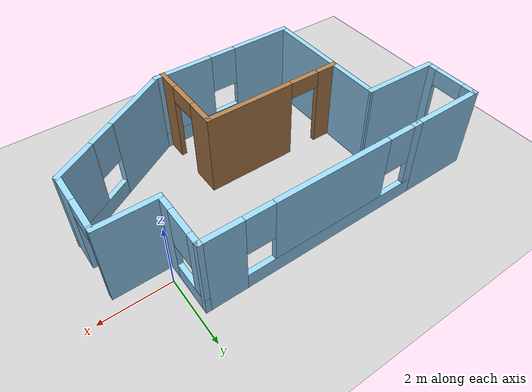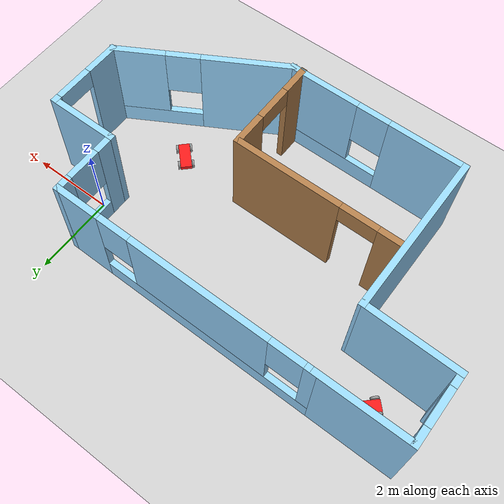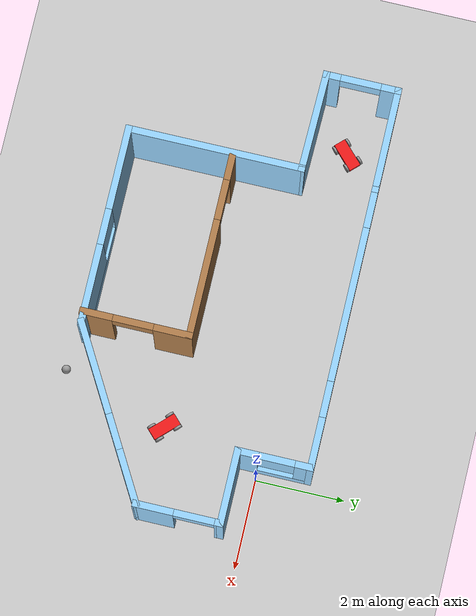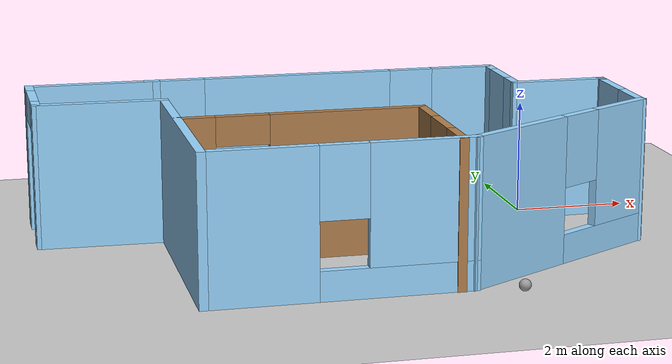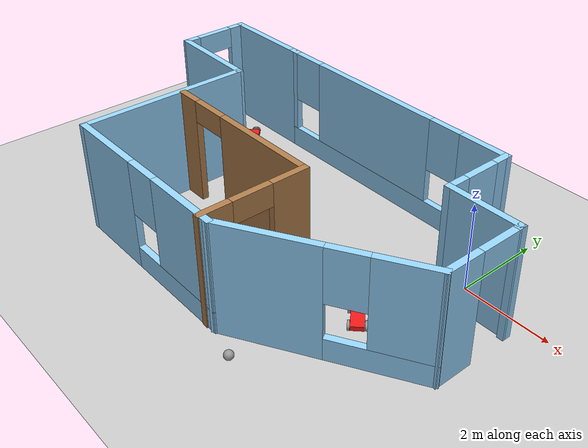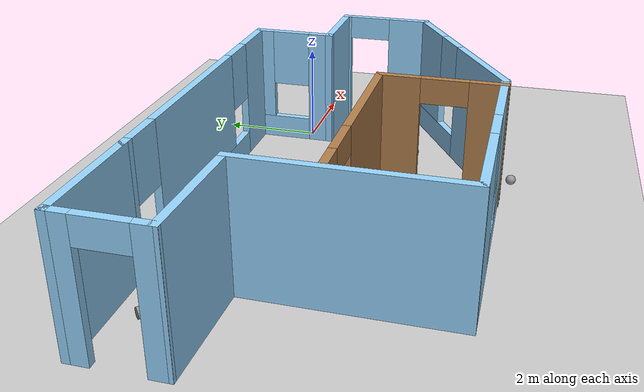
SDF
<sdf version="1.6">
 <world name="default">
  <plugin name="hello" filename="libhello.so"/>
  <light name="sun" type="directional">
   <pose>0 0 10 0 -0 0</pose>
   <diffuse>0.8 0.8 0.8 1</diffuse>
   <specular>0.2 0.2 0.2 1</specular>
   <attenuation>
    <range>1000</range>
    <constant>0.9</constant>
    <linear>0.01</linear>
    <quadratic>0.001</quadratic>
   </attenuation>
   <direction>-0.5 0.1 -0.9</direction>
   <spot><inner_angle>0</inner_angle><outer_angle>0</outer_angle><falloff>0</falloff></spot>
  </light>
  <model name="ground_plane">
   <static>1</static>
   <link name="link">
    <collision name="collision">
     <geometry><plane><normal>0 0 1</normal><size>100 100</size></plane></geometry>
     <surface>
      <contact><collide_bitmask>65535</collide_bitmask></contact>
      <friction><ode><mu>100</mu><mu2>50</mu2></ode></friction>
     </surface>
    </collision>
    <visual name="visual">
     <cast_shadows>0</cast_shadows>
     <geometry><plane><normal>0 0 1</normal><size>100 100</size></plane></geometry>
     <material>
      <script><uri>file://media/materials/scripts/gazebo.material</uri><name>Gazebo/Grey</name></script>
     </material>
    </visual>
   </link>
  </model>
  <gravity>0 0 -9.8</gravity>
  <magnetic_field>6e-06 2.3e-05 -4.2e-05</magnetic_field>
  <atmosphere type="adiabatic"/>
  <physics name="default_physics" default="0" type="ode">
   <max_step_size>0.001</max_step_size>
   <real_time_factor>1</real_time_factor>
   <real_time_update_rate>1000</real_time_update_rate>
  </physics>
  <scene><ambient>0.4 0.4 0.4 1</ambient><background>0.7 0.7 0.7 1</background><shadows>1</shadows></scene>
  <spherical_coordinates>
   <surface_model>EARTH_WGS84</surface_model>
   <latitude_deg>0</latitude_deg>
   <longitude_deg>0</longitude_deg>
   <elevation>0</elevation>
   <heading_deg>0</heading_deg>
  </spherical_coordinates>
  <model name="building2">
   <pose>-3.66619 -1.63301 0 0 -0 0</pose>
   <link name="Wall_0">
    <collision name="Wall_0_Collision">
     <geometry><box><size>4 0.15 2.5</size></box></geometry>
     <pose>0 0 1.25 0 -0 0</pose>
    </collision>
    <visual name="Wall_0_Visual">
     <pose>0 0 1.25 0 -0 0</pose>
     <geometry><box><size>4 0.15 2.5</size></box></geometry>
     <material>
      <script><uri>file://media/materials/scripts/gazebo.material</uri><name>Gazebo/Grey</name></script>
      <ambient>0.596078 0.839216 1 1</ambient>
     </material>
     <meta><layer>0</layer></meta>
    </visual>
    <pose>-2.88857 -0.811274 0 0 0 -1.5708</pose>
   </link>
   <link name="Wall_1">
    <pose>-0.713568 -2.73627 0 0 -0 0</pose>
    <visual name="Wall_1_Visual_0">
     <pose>-1.30188 0 1.25 0 -0 0</pose>
     <geometry><box><size>1.89624 0.15 2.5</size></box></geometry>
     <material>
      <script><uri>file://media/materials/scripts/gazebo.material</uri><name>Gazebo/Grey</name></script>
      <ambient>0.596078 0.839216 1 1</ambient>
     </material>
     <meta><layer>0</layer></meta>
    </visual>
    <collision name="Wall_1_Collision_0">
     <geometry><box><size>1.89624 0.15 2.5</size></box></geometry>
     <pose>-1.30188 0 1.25 0 -0 0</pose>
    </collision>
    <visual name="Wall_1_Visual_1">
     <pose>0.948119 0 0.25 0 -0 0</pose>
     <geometry><box><size>2.60376 0.15 0.5</size></box></geometry>
     <material>
      <script><uri>file://media/materials/scripts/gazebo.material</uri><name>Gazebo/Grey</name></script>
      <ambient>0.596078 0.839216 1 1</ambient>
     </material>
     <meta><layer>0</layer></meta>
    </visual>
    <collision name="Wall_1_Collision_1">
     <geometry><box><size>2.60376 0.15 0.5</size></box></geometry>
     <pose>0.948119 0 0.25 0 -0 0</pose>
    </collision>
    <visual name="Wall_1_Visual_2">
     <pose>1.34812 0 1.5 0 -0 0</pose>
     <geometry><box><size>1.80376 0.15 2</size></box></geometry>
     <material>
      <script><uri>file://media/materials/scripts/gazebo.material</uri><name>Gazebo/Grey</name></script>
      <ambient>0.596078 0.839216 1 1</ambient>
     </material>
     <meta><layer>0</layer></meta>
    </visual>
    <collision name="Wall_1_Collision_2">
     <geometry><box><size>1.80376 0.15 2</size></box></geometry>
     <pose>1.34812 0 1.5 0 -0 0</pose>
    </collision>
    <visual name="Wall_1_Visual_3">
     <pose>0.046238 0 1.9 0 -0 0</pose>
     <geometry><box><size>0.8 0.15 1.2</size></box></geometry>
     <material>
      <script><uri>file://media/materials/scripts/gazebo.material</uri><name>Gazebo/Grey</name></script>
      <ambient>0.596078 0.839216 1 1</ambient>
     </material>
     <meta><layer>0</layer></meta>
    </visual>
    <collision name="Wall_1_Collision_3">
     <geometry><box><size>0.8 0.15 1.2</size></box></geometry>
     <pose>0.046238 0 1.9 0 -0 0</pose>
    </collision>
   </link>
   <link name="Wall_11">
    <pose>-0.821078 -0.407909 0 0 -0 0</pose>
    <visual name="Wall_11_Visual_0">
     <pose>-1.7878 0 1.25 0 -0 0</pose>
     <geometry><box><size>0.674403 0.15 2.5</size></box></geometry>
     <material>
      <script><uri>file://media/materials/scripts/gazebo.material</uri><name>Gazebo/Wood</name></script>
      <ambient>1 1 1 1</ambient>
     </material>
     <meta><layer>0</layer></meta>
    </visual>
    <collision name="Wall_11_Collision_0">
     <geometry><box><size>0.674403 0.15 2.5</size></box></geometry>
     <pose>-1.7878 0 1.25 0 -0 0</pose>
    </collision>
    <visual name="Wall_11_Visual_1">
     <pose>0.787202 0 1.25 0 -0 0</pose>
     <geometry><box><size>2.6756 0.15 2.5</size></box></geometry>
     <material>
      <script><uri>file://media/materials/scripts/gazebo.material</uri><name>Gazebo/Wood</name></script>
      <ambient>1 1 1 1</ambient>
     </material>
     <meta><layer>0</layer></meta>
    </visual>
    <collision name="Wall_11_Collision_1">
     <geometry><box><size>2.6756 0.15 2.5</size></box></geometry>
     <pose>0.787202 0 1.25 0 -0 0</pose>
    </collision>
    <visual name="Wall_11_Visual_2">
     <pose>-1.0006 0 2.25 0 -0 0</pose>
     <geometry><box><size>0.9 0.15 0.5</size></box></geometry>
     <material>
      <script><uri>file://media/materials/scripts/gazebo.material</uri><name>Gazebo/Wood</name></script>
      <ambient>1 1 1 1</ambient>
     </material>
     <meta><layer>0</layer></meta>
    </visual>
    <collision name="Wall_11_Collision_2">
     <geometry><box><size>0.9 0.15 0.5</size></box></geometry>
     <pose>-1.0006 0 2.25 0 -0 0</pose>
    </collision>
   </link>
   <link name="Wall_12">
    <pose>1.22892 -1.58291 0 0 0 -1.5708</pose>
    <visual name="Wall_12_Visual_0">
     <pose>-0.816603 0 1.25 0 -0 0</pose>
     <geometry><box><size>0.866794 0.15 2.5</size></box></geometry>
     <material>
      <script><uri>file://media/materials/scripts/gazebo.material</uri><name>Gazebo/Wood</name></script>
      <ambient>1 1 1 1</ambient>
     </material>
     <meta><layer>0</layer></meta>
    </visual>
    <collision name="Wall_12_Collision_0">
     <geometry><box><size>0.866794 0.15 2.5</size></box></geometry>
     <pose>-0.816603 0 1.25 0 -0 0</pose>
    </collision>
    <visual name="Wall_12_Visual_1">
     <pose>0.883397 0 1.25 0 -0 0</pose>
     <geometry><box><size>0.733206 0.15 2.5</size></box></geometry>
     <material>
      <script><uri>file://media/materials/scripts/gazebo.material</uri><name>Gazebo/Wood</name></script>
      <ambient>1 1 1 1</ambient>
     </material>
     <meta><layer>0</layer></meta>
    </visual>
    <collision name="Wall_12_Collision_1">
     <geometry><box><size>0.733206 0.15 2.5</size></box></geometry>
     <pose>0.883397 0 1.25 0 -0 0</pose>
    </collision>
    <visual name="Wall_12_Visual_2">
     <pose>0.066794 0 2.25 0 -0 0</pose>
     <geometry><box><size>0.9 0.15 0.5</size></box></geometry>
     <material>
      <script><uri>file://media/materials/scripts/gazebo.material</uri><name>Gazebo/Wood</name></script>
      <ambient>1 1 1 1</ambient>
     </material>
     <meta><layer>0</layer></meta>
    </visual>
    <collision name="Wall_12_Collision_2">
     <geometry><box><size>0.9 0.15 0.5</size></box></geometry>
     <pose>0.066794 0 2.25 0 -0 0</pose>
    </collision>
   </link>
   <link name="Wall_2">
    <pose>3.23678 -1.71127 0 0 -0 0.523599</pose>
    <visual name="Wall_2_Visual_0">
     <pose>-1.04483 0 1.25 0 -0 0</pose>
     <geometry><box><size>2.16034 0.15 2.5</size></box></geometry>
     <material>
      <script><uri>file://media/materials/scripts/gazebo.material</uri><name>Gazebo/Grey</name></script>
      <ambient>0.596078 0.839216 1 1</ambient>
     </material>
     <meta><layer>0</layer></meta>
    </visual>
    <collision name="Wall_2_Collision_0">
     <geometry><box><size>2.16034 0.15 2.5</size></box></geometry>
     <pose>-1.04483 0 1.25 0 -0 0</pose>
    </collision>
    <visual name="Wall_2_Visual_1">
     <pose>1.08017 0 0.25 0 -0 0</pose>
     <geometry><box><size>2.08966 0.15 0.5</size></box></geometry>
     <material>
      <script><uri>file://media/materials/scripts/gazebo.material</uri><name>Gazebo/Grey</name></script>
      <ambient>0.596078 0.839216 1 1</ambient>
     </material>
     <meta><layer>0</layer></meta>
    </visual>
    <collision name="Wall_2_Collision_1">
     <geometry><box><size>2.08966 0.15 0.5</size></box></geometry>
     <pose>1.08017 0 0.25 0 -0 0</pose>
    </collision>
    <visual name="Wall_2_Visual_2">
     <pose>1.48017 0 1.5 0 -0 0</pose>
     <geometry><box><size>1.28965 0.15 2</size></box></geometry>
     <material>
      <script><uri>file://media/materials/scripts/gazebo.material</uri><name>Gazebo/Grey</name></script>
      <ambient>0.596078 0.839216 1 1</ambient>
     </material>
     <meta><layer>0</layer></meta>
    </visual>
    <collision name="Wall_2_Collision_2">
     <geometry><box><size>1.28965 0.15 2</size></box></geometry>
     <pose>1.48017 0 1.5 0 -0 0</pose>
    </collision>
    <visual name="Wall_2_Visual_3">
     <pose>0.435345 0 1.9 0 -0 0</pose>
     <geometry><box><size>0.8 0.15 1.2</size></box></geometry>
     <material>
      <script><uri>file://media/materials/scripts/gazebo.material</uri><name>Gazebo/Grey</name></script>
      <ambient>0.596078 0.839216 1 1</ambient>
     </material>
     <meta><layer>0</layer></meta>
    </visual>
    <collision name="Wall_2_Collision_3">
     <geometry><box><size>0.8 0.15 1.2</size></box></geometry>
     <pose>0.435345 0 1.9 0 -0 0</pose>
    </collision>
   </link>
   <link name="Wall_3">
    <pose>5.01214 0.238726 0 0 -0 1.5708</pose>
    <visual name="Wall_3_Visual_0">
     <pose>-0.549851 0 1.25 0 -0 0</pose>
     <geometry><box><size>0.900298 0.15 2.5</size></box></geometry>
     <material>
      <script><uri>file://media/materials/scripts/gazebo.material</uri><name>Gazebo/Grey</name></script>
      <ambient>0.596078 0.839216 1 1</ambient>
     </material>
     <meta><layer>0</layer></meta>
    </visual>
    <collision name="Wall_3_Collision_0">
     <geometry><box><size>0.900298 0.15 2.5</size></box></geometry>
     <pose>-0.549851 0 1.25 0 -0 0</pose>
    </collision>
    <visual name="Wall_3_Visual_1">
     <pose>0.900149 0 1.25 0 -0 0</pose>
     <geometry><box><size>0.199702 0.15 2.5</size></box></geometry>
     <material>
      <script><uri>file://media/materials/scripts/gazebo.material</uri><name>Gazebo/Grey</name></script>
      <ambient>0.596078 0.839216 1 1</ambient>
     </material>
     <meta><layer>0</layer></meta>
    </visual>
    <collision name="Wall_3_Collision_1">
     <geometry><box><size>0.199702 0.15 2.5</size></box></geometry>
     <pose>0.900149 0 1.25 0 -0 0</pose>
    </collision>
    <visual name="Wall_3_Visual_2">
     <pose>0.350298 0 2.25 0 -0 0</pose>
     <geometry><box><size>0.9 0.15 0.5</size></box></geometry>
     <material>
      <script><uri>file://media/materials/scripts/gazebo.material</uri><name>Gazebo/Grey</name></script>
      <ambient>0.596078 0.839216 1 1</ambient>
     </material>
     <meta><layer>0</layer></meta>
    </visual>
    <collision name="Wall_3_Collision_2">
     <geometry><box><size>0.9 0.15 0.5</size></box></geometry>
     <pose>0.350298 0 2.25 0 -0 0</pose>
    </collision>
   </link>
   <link name="Wall_4">
    <collision name="Wall_4_Collision">
     <geometry><box><size>1.75 0.15 2.5</size></box></geometry>
     <pose>0 0 1.25 0 -0 0</pose>
    </collision>
    <visual name="Wall_4_Visual">
     <pose>0 0 1.25 0 -0 0</pose>
     <geometry><box><size>1.75 0.15 2.5</size></box></geometry>
     <material>
      <script><uri>file://media/materials/scripts/gazebo.material</uri><name>Gazebo/Grey</name></script>
      <ambient>0.596078 0.839216 1 1</ambient>
     </material>
     <meta><layer>0</layer></meta>
    </visual>
    <pose>4.21214 1.16373 0 0 -0 3.14159</pose>
   </link>
   <link name="Wall_5">
    <pose>3.41214 1.96373 0 0 -0 1.5708</pose>
    <visual name="Wall_5_Visual_0">
     <pose>-0.607758 0 1.25 0 -0 0</pose>
     <geometry><box><size>0.534483 0.15 2.5</size></box></geometry>
     <material>
      <script><uri>file://media/materials/scripts/gazebo.material</uri><name>Gazebo/Grey</name></script>
      <ambient>0.596078 0.839216 1 1</ambient>
     </material>
     <meta><layer>0</layer></meta>
    </visual>
    <collision name="Wall_5_Collision_0">
     <geometry><box><size>0.534483 0.15 2.5</size></box></geometry>
     <pose>-0.607758 0 1.25 0 -0 0</pose>
    </collision>
    <visual name="Wall_5_Visual_1">
     <pose>0.267242 0 0.25 0 -0 0</pose>
     <geometry><box><size>1.21552 0.15 0.5</size></box></geometry>
     <material>
      <script><uri>file://media/materials/scripts/gazebo.material</uri><name>Gazebo/Grey</name></script>
      <ambient>0.596078 0.839216 1 1</ambient>
     </material>
     <meta><layer>0</layer></meta>
    </visual>
    <collision name="Wall_5_Collision_1">
     <geometry><box><size>1.21552 0.15 0.5</size></box></geometry>
     <pose>0.267242 0 0.25 0 -0 0</pose>
    </collision>
    <visual name="Wall_5_Visual_2">
     <pose>0.667242 0 1.5 0 -0 0</pose>
     <geometry><box><size>0.415517 0.15 2</size></box></geometry>
     <material>
      <script><uri>file://media/materials/scripts/gazebo.material</uri><name>Gazebo/Grey</name></script>
      <ambient>0.596078 0.839216 1 1</ambient>
     </material>
     <meta><layer>0</layer></meta>
    </visual>
    <collision name="Wall_5_Collision_2">
     <geometry><box><size>0.415517 0.15 2</size></box></geometry>
     <pose>0.667242 0 1.5 0 -0 0</pose>
    </collision>
    <visual name="Wall_5_Visual_3">
     <pose>0.059483 0 1.9 0 -0 0</pose>
     <geometry><box><size>0.8 0.15 1.2</size></box></geometry>
     <material>
      <script><uri>file://media/materials/scripts/gazebo.material</uri><name>Gazebo/Grey</name></script>
      <ambient>0.596078 0.839216 1 1</ambient>
     </material>
     <meta><layer>0</layer></meta>
    </visual>
    <collision name="Wall_5_Collision_3">
     <geometry><box><size>0.8 0.15 1.2</size></box></geometry>
     <pose>0.059483 0 1.9 0 -0 0</pose>
    </collision>
   </link>
   <link name="Wall_6">
    <pose>0.237136 2.76373 0 0 -0 3.14159</pose>
    <visual name="Wall_6_Visual_0">
     <pose>-2.65829 0 1.25 0 -0 0</pose>
     <geometry><box><size>1.18343 0.15 2.5</size></box></geometry>
     <material>
      <script><uri>file://media/materials/scripts/gazebo.material</uri><name>Gazebo/Grey</name></script>
      <ambient>0.596078 0.839216 1 1</ambient>
     </material>
     <meta><layer>0</layer></meta>
    </visual>
    <collision name="Wall_6_Collision_0">
     <geometry><box><size>1.18343 0.15 2.5</size></box></geometry>
     <pose>-2.65829 0 1.25 0 -0 0</pose>
    </collision>
    <visual name="Wall_6_Visual_1">
     <pose>0.591714 0 0.25 0 -0 0</pose>
     <geometry><box><size>5.31657 0.15 0.5</size></box></geometry>
     <material>
      <script><uri>file://media/materials/scripts/gazebo.material</uri><name>Gazebo/Grey</name></script>
      <ambient>0.596078 0.839216 1 1</ambient>
     </material>
     <meta><layer>0</layer></meta>
    </visual>
    <collision name="Wall_6_Collision_1">
     <geometry><box><size>5.31657 0.15 0.5</size></box></geometry>
     <pose>0.591714 0 0.25 0 -0 0</pose>
    </collision>
    <visual name="Wall_6_Visual_2">
     <pose>0.449725 0 1.5 0 -0 0</pose>
     <geometry><box><size>3.4326 0.15 2</size></box></geometry>
     <material>
      <script><uri>file://media/materials/scripts/gazebo.material</uri><name>Gazebo/Grey</name></script>
      <ambient>0.596078 0.839216 1 1</ambient>
     </material>
     <meta><layer>0</layer></meta>
    </visual>
    <collision name="Wall_6_Collision_2">
     <geometry><box><size>3.4326 0.15 2</size></box></geometry>
     <pose>0.449725 0 1.5 0 -0 0</pose>
    </collision>
    <visual name="Wall_6_Visual_3">
     <pose>3.10801 0 1.5 0 -0 0</pose>
     <geometry><box><size>0.283978 0.15 2</size></box></geometry>
     <material>
      <script><uri>file://media/materials/scripts/gazebo.material</uri><name>Gazebo/Grey</name></script>
      <ambient>0.596078 0.839216 1 1</ambient>
     </material>
     <meta><layer>0</layer></meta>
    </visual>
    <collision name="Wall_6_Collision_3">
     <geometry><box><size>0.283978 0.15 2</size></box></geometry>
     <pose>3.10801 0 1.5 0 -0 0</pose>
    </collision>
    <visual name="Wall_6_Visual_4">
     <pose>-1.66657 0 1.9 0 -0 0</pose>
     <geometry><box><size>0.8 0.15 1.2</size></box></geometry>
     <material>
      <script><uri>file://media/materials/scripts/gazebo.material</uri><name>Gazebo/Grey</name></script>
      <ambient>0.596078 0.839216 1 1</ambient>
     </material>
     <meta><layer>0</layer></meta>
    </visual>
    <collision name="Wall_6_Collision_4">
     <geometry><box><size>0.8 0.15 1.2</size></box></geometry>
     <pose>-1.66657 0 1.9 0 -0 0</pose>
    </collision>
    <visual name="Wall_6_Visual_5">
     <pose>2.56602 0 1.9 0 -0 0</pose>
     <geometry><box><size>0.8 0.15 1.2</size></box></geometry>
     <material>
      <script><uri>file://media/materials/scripts/gazebo.material</uri><name>Gazebo/Grey</name></script>
      <ambient>0.596078 0.839216 1 1</ambient>
     </material>
     <meta><layer>0</layer></meta>
    </visual>
    <collision name="Wall_6_Collision_5">
     <geometry><box><size>0.8 0.15 1.2</size></box></geometry>
     <pose>2.56602 0 1.9 0 -0 0</pose>
    </collision>
   </link>
   <link name="Wall_7">
    <collision name="Wall_7_Collision">
     <geometry><box><size>2.25 0.15 2.5</size></box></geometry>
     <pose>0 0 1.25 0 -0 0</pose>
    </collision>
    <visual name="Wall_7_Visual">
     <pose>0 0 1.25 0 -0 0</pose>
     <geometry><box><size>2.25 0.15 2.5</size></box></geometry>
     <material>
      <script><uri>file://media/materials/scripts/gazebo.material</uri><name>Gazebo/Grey</name></script>
      <ambient>0.596078 0.839216 1 1</ambient>
     </material>
     <meta><layer>0</layer></meta>
    </visual>
    <pose>-3.98786 2.76373 0 0 -0 3.14159</pose>
   </link>
   <link name="Wall_8">
    <pose>-5.03786 1.96373 0 0 0 -1.5708</pose>
    <visual name="Wall_8_Visual_0">
     <pose>-0.648516 0 1.25 0 -0 0</pose>
     <geometry><box><size>0.452967 0.15 2.5</size></box></geometry>
     <material>
      <script><uri>file://media/materials/scripts/gazebo.material</uri><name>Gazebo/Grey</name></script>
      <ambient>0.596078 0.839216 1 1</ambient>
     </material>
     <meta><layer>0</layer></meta>
    </visual>
    <collision name="Wall_8_Collision_0">
     <geometry><box><size>0.452967 0.15 2.5</size></box></geometry>
     <pose>-0.648516 0 1.25 0 -0 0</pose>
    </collision>
    <visual name="Wall_8_Visual_1">
     <pose>0.676484 0 1.25 0 -0 0</pose>
     <geometry><box><size>0.397033 0.15 2.5</size></box></geometry>
     <material>
      <script><uri>file://media/materials/scripts/gazebo.material</uri><name>Gazebo/Grey</name></script>
      <ambient>0.596078 0.839216 1 1</ambient>
     </material>
     <meta><layer>0</layer></meta>
    </visual>
    <collision name="Wall_8_Collision_1">
     <geometry><box><size>0.397033 0.15 2.5</size></box></geometry>
     <pose>0.676484 0 1.25 0 -0 0</pose>
    </collision>
    <visual name="Wall_8_Visual_2">
     <pose>0.027967 0 2.25 0 -0 0</pose>
     <geometry><box><size>0.9 0.15 0.5</size></box></geometry>
     <material>
      <script><uri>file://media/materials/scripts/gazebo.material</uri><name>Gazebo/Grey</name></script>
      <ambient>0.596078 0.839216 1 1</ambient>
     </material>
     <meta><layer>0</layer></meta>
    </visual>
    <collision name="Wall_8_Collision_2">
     <geometry><box><size>0.9 0.15 0.5</size></box></geometry>
     <pose>0.027967 0 2.25 0 -0 0</pose>
    </collision>
   </link>
   <link name="Wall_9">
    <collision name="Wall_9_Collision">
     <geometry><box><size>2.29988 0.15 2.5</size></box></geometry>
     <pose>0 0 1.25 0 -0 0</pose>
    </collision>
    <visual name="Wall_9_Visual">
     <pose>0 0 1.25 0 -0 0</pose>
     <geometry><box><size>2.29988 0.15 2.5</size></box></geometry>
     <material>
      <script><uri>file://media/materials/scripts/gazebo.material</uri><name>Gazebo/Grey</name></script>
      <ambient>0.596078 0.839216 1 1</ambient>
     </material>
     <meta><layer>0</layer></meta>
    </visual>
    <pose>-3.96322 1.13873 0 0 0 -0.023259</pose>
   </link>
   <static>1</static>
  </model>
  <light name="user_point_light_0" type="point">
   <pose>-2.91865 -0.710468 1 0 -0 0</pose>
   <diffuse>0.5 0.5 0.5 1</diffuse>
   <specular>0.1 0.1 0.1 1</specular>
   <attenuation>
    <range>20</range>
    <constant>0.5</constant>
    <linear>0.01</linear>
    <quadratic>0.001</quadratic>
   </attenuation>
   <cast_shadows>0</cast_shadows>
   <direction>0 0 -1</direction>
   <spot><inner_angle>0</inner_angle><outer_angle>0</outer_angle><falloff>0</falloff></spot>
  </light>
  <model name="robot">
   <link name="link_0">
    <inertial>
     <mass>0.305572</mass>
     <inertia>
      <ixx>0.00217174</ixx>
      <ixy>0</ixy>
      <ixz>0</ixz>
      <iyy>0.0116265</iyy>
      <iyz>0</iyz>
      <izz>0.0132889</izz>
     </inertia>
    </inertial>
    <pose>-0 0 0.2 0 -0 0</pose>
    <visual name="visual">
     <geometry><box><size>0.668265 0.274382 0.1</size></box></geometry>
     <material>
      <lighting>1</lighting>
      <script><uri>file://media/materials/scripts/gazebo.material</uri><name>Gazebo/Grey</name></script>
      <shader type="pixel"><normal_map>__default__</normal_map></shader>
      <ambient>0.95 0.1 0.1 1</ambient>
      <diffuse>0.7 0.7 0.7 1</diffuse>
      <specular>0.5 0.01 0.01 1</specular>
      <emissive>0 0 0 1</emissive>
     </material>
    </visual>
    <collision name="collision">
     <geometry><box><size>0.668265 0.274382 0.1</size></box></geometry>
     <surface>
      <friction>
       <ode><mu>1</mu><mu2>1</mu2><fdir1>0 0 0</fdir1><slip1>0</slip1><slip2>0</slip2></ode>
       <torsional>
        <coefficient>1</coefficient>
        <patch_radius>0</patch_radius>
        <surface_radius>0</surface_radius>
        <use_patch_radius>1</use_patch_radius>
        <ode><slip>0</slip></ode>
       </torsional>
      </friction>
      <bounce><restitution_coefficient>0</restitution_coefficient><threshold>1e+06</threshold></bounce>
      <contact>
       <collide_without_contact>0</collide_without_contact>
       <collide_without_contact_bitmask>1</collide_without_contact_bitmask>
       <collide_bitmask>1</collide_bitmask>
       <ode>
        <soft_cfm>0</soft_cfm>
        <soft_erp>0.2</soft_erp>
        <kp>1e+13</kp>
        <kd>1</kd>
        <max_vel>0.01</max_vel>
        <min_depth>0</min_depth>
       </ode>
       <bullet>
        <split_impulse>1</split_impulse>
        <split_impulse_penetration_threshold>-0.01</split_impulse_penetration_threshold>
        <soft_cfm>0</soft_cfm>
        <soft_erp>0.2</soft_erp>
        <kp>1e+13</kp>
        <kd>1</kd>
       </bullet>
      </contact>
     </surface>
    </collision>
   </link>
   <link name="link_1">
    <inertial>
     <mass>0.461439</mass>
     <inertia>
      <ixx>0.00280578</ixx>
      <ixy>0</ixy>
      <ixz>0</ixz>
      <iyy>0.00280578</iyy>
      <iyz>0</iyz>
      <izz>0.00506899</izz>
     </inertia>
    </inertial>
    <pose>0.237749 -0.164737 0.199994 1.5707 1e-06 -1e-06</pose>
    <visual name="visual">
     <geometry><cylinder><radius>0.1</radius><length>0.05</length></cylinder></geometry>
     <material>
      <lighting>1</lighting>
      <script><uri>file://media/materials/scripts/gazebo.material</uri><name>Gazebo/Grey</name></script>
      <shader type="pixel"><normal_map>__default__</normal_map></shader>
      <ambient>0.3 0.3 0.3 1</ambient>
      <diffuse>0.7 0.7 0.7 1</diffuse>
      <specular>0.01 0.01 0.01 1</specular>
      <emissive>0 0 0 1</emissive>
     </material>
    </visual>
    <collision name="collision">
     <geometry><cylinder><radius>0.1</radius><length>0.05</length></cylinder></geometry>
     <surface>
      <friction>
       <ode><mu>1</mu><mu2>1</mu2><fdir1>0 0 0</fdir1><slip1>0</slip1><slip2>0</slip2></ode>
       <torsional>
        <coefficient>1</coefficient>
        <patch_radius>0</patch_radius>
        <surface_radius>0</surface_radius>
        <use_patch_radius>1</use_patch_radius>
        <ode><slip>0</slip></ode>
       </torsional>
      </friction>
      <bounce><restitution_coefficient>0</restitution_coefficient><threshold>1e+06</threshold></bounce>
      <contact>
       <collide_without_contact>0</collide_without_contact>
       <collide_without_contact_bitmask>1</collide_without_contact_bitmask>
       <collide_bitmask>1</collide_bitmask>
       <ode>
        <soft_cfm>0</soft_cfm>
        <soft_erp>0.2</soft_erp>
        <kp>1e+13</kp>
        <kd>1</kd>
        <max_vel>0.01</max_vel>
        <min_depth>0</min_depth>
       </ode>
       <bullet>
        <split_impulse>1</split_impulse>
        <split_impulse_penetration_threshold>-0.01</split_impulse_penetration_threshold>
        <soft_cfm>0</soft_cfm>
        <soft_erp>0.2</soft_erp>
        <kp>1e+13</kp>
        <kd>1</kd>
       </bullet>
      </contact>
     </surface>
    </collision>
   </link>
   <link name="link_1_clone">
    <inertial>
     <mass>0.461439</mass>
     <inertia>
      <ixx>0.00280578</ixx>
      <ixy>0</ixy>
      <ixz>0</ixz>
      <iyy>0.00280578</iyy>
      <iyz>0</iyz>
      <izz>0.00506899</izz>
     </inertia>
    </inertial>
    <pose>0.233378 0.17364 0.200019 1.57061 -0 0</pose>
    <visual name="visual">
     <geometry><cylinder><radius>0.1</radius><length>0.05</length></cylinder></geometry>
     <material>
      <lighting>1</lighting>
      <script><uri>file://media/materials/scripts/gazebo.material</uri><name>Gazebo/Grey</name></script>
      <shader type="pixel"><normal_map>__default__</normal_map></shader>
      <ambient>0.3 0.3 0.3 1</ambient>
      <diffuse>0.7 0.7 0.7 1</diffuse>
      <specular>0.01 0.01 0.01 1</specular>
      <emissive>0 0 0 1</emissive>
     </material>
    </visual>
    <collision name="collision">
     <geometry><cylinder><radius>0.1</radius><length>0.05</length></cylinder></geometry>
     <surface>
      <friction>
       <ode><mu>1</mu><mu2>1</mu2><fdir1>0 0 0</fdir1><slip1>0</slip1><slip2>0</slip2></ode>
       <torsional>
        <coefficient>1</coefficient>
        <patch_radius>0</patch_radius>
        <surface_radius>0</surface_radius>
        <use_patch_radius>1</use_patch_radius>
        <ode><slip>0</slip></ode>
       </torsional>
      </friction>
      <bounce><restitution_coefficient>0</restitution_coefficient><threshold>1e+06</threshold></bounce>
      <contact>
       <collide_without_contact>0</collide_without_contact>
       <collide_without_contact_bitmask>1</collide_without_contact_bitmask>
       <collide_bitmask>1</collide_bitmask>
       <ode>
        <soft_cfm>0</soft_cfm>
        <soft_erp>0.2</soft_erp>
        <kp>1e+13</kp>
        <kd>1</kd>
        <max_vel>0.01</max_vel>
        <min_depth>0</min_depth>
       </ode>
       <bullet>
        <split_impulse>1</split_impulse>
        <split_impulse_penetration_threshold>-0.01</split_impulse_penetration_threshold>
        <soft_cfm>0</soft_cfm>
        <soft_erp>0.2</soft_erp>
        <kp>1e+13</kp>
        <kd>1</kd>
       </bullet>
      </contact>
     </surface>
    </collision>
   </link>
   <link name="link_1_clone_clone">
    <inertial>
     <mass>0.461439</mass>
     <inertia>
      <ixx>0.00280578</ixx>
      <ixy>0</ixy>
      <ixz>0</ixz>
      <iyy>0.00280578</iyy>
      <iyz>0</iyz>
      <izz>0.00506899</izz>
     </inertia>
    </inertial>
    <pose>-0.237741 0.167564 0.199983 1.57052 -0 0</pose>
    <visual name="visual">
     <geometry><cylinder><radius>0.1</radius><length>0.05</length></cylinder></geometry>
     <material>
      <lighting>1</lighting>
      <script><uri>file://media/materials/scripts/gazebo.material</uri><name>Gazebo/Grey</name></script>
      <shader type="pixel"><normal_map>__default__</normal_map></shader>
      <ambient>0.3 0.3 0.3 1</ambient>
      <diffuse>0.7 0.7 0.7 1</diffuse>
      <specular>0.01 0.01 0.01 1</specular>
      <emissive>0 0 0 1</emissive>
     </material>
    </visual>
    <collision name="collision">
     <geometry><cylinder><radius>0.1</radius><length>0.05</length></cylinder></geometry>
     <surface>
      <friction>
       <ode><mu>1</mu><mu2>1</mu2><fdir1>0 0 0</fdir1><slip1>0</slip1><slip2>0</slip2></ode>
       <torsional>
        <coefficient>1</coefficient>
        <patch_radius>0</patch_radius>
        <surface_radius>0</surface_radius>
        <use_patch_radius>1</use_patch_radius>
        <ode><slip>0</slip></ode>
       </torsional>
      </friction>
      <bounce><restitution_coefficient>0</restitution_coefficient><threshold>1e+06</threshold></bounce>
      <contact>
       <collide_without_contact>0</collide_without_contact>
       <collide_without_contact_bitmask>1</collide_without_contact_bitmask>
       <collide_bitmask>1</collide_bitmask>
       <ode>
        <soft_cfm>0</soft_cfm>
        <soft_erp>0.2</soft_erp>
        <kp>1e+13</kp>
        <kd>1</kd>
        <max_vel>0.01</max_vel>
        <min_depth>0</min_depth>
       </ode>
       <bullet>
        <split_impulse>1</split_impulse>
        <split_impulse_penetration_threshold>-0.01</split_impulse_penetration_threshold>
        <soft_cfm>0</soft_cfm>
        <soft_erp>0.2</soft_erp>
        <kp>1e+13</kp>
        <kd>1</kd>
       </bullet>
      </contact>
     </surface>
    </collision>
   </link>
   <link name="link_1_clone_clone_0">
    <inertial>
     <mass>0.461439</mass>
     <inertia>
      <ixx>0.00280578</ixx>
      <ixy>0</ixy>
      <ixz>0</ixz>
      <iyy>0.00280578</iyy>
      <iyz>0</iyz>
      <izz>0.00506899</izz>
     </inertia>
    </inertial>
    <pose>-0.23337 -0.170841 0.199985 1.57052 -0 0</pose>
    <visual name="visual">
     <geometry><cylinder><radius>0.1</radius><length>0.05</length></cylinder></geometry>
     <material>
      <lighting>1</lighting>
      <script><uri>file://media/materials/scripts/gazebo.material</uri><name>Gazebo/Grey</name></script>
      <shader type="pixel"><normal_map>__default__</normal_map></shader>
      <ambient>0.3 0.3 0.3 1</ambient>
      <diffuse>0.7 0.7 0.7 1</diffuse>
      <specular>0.01 0.01 0.01 1</specular>
      <emissive>0 0 0 1</emissive>
     </material>
    </visual>
    <collision name="collision">
     <geometry><cylinder><radius>0.1</radius><length>0.05</length></cylinder></geometry>
     <surface>
      <friction>
       <ode><mu>1</mu><mu2>1</mu2><fdir1>0 0 0</fdir1><slip1>0</slip1><slip2>0</slip2></ode>
       <torsional>
        <coefficient>1</coefficient>
        <patch_radius>0</patch_radius>
        <surface_radius>0</surface_radius>
        <use_patch_radius>1</use_patch_radius>
        <ode><slip>0</slip></ode>
       </torsional>
      </friction>
      <bounce><restitution_coefficient>0</restitution_coefficient><threshold>1e+06</threshold></bounce>
      <contact>
       <collide_without_contact>0</collide_without_contact>
       <collide_without_contact_bitmask>1</collide_without_contact_bitmask>
       <collide_bitmask>1</collide_bitmask>
       <ode>
        <soft_cfm>0</soft_cfm>
        <soft_erp>0.2</soft_erp>
        <kp>1e+13</kp>
        <kd>1</kd>
        <max_vel>0.01</max_vel>
        <min_depth>0</min_depth>
       </ode>
       <bullet>
        <split_impulse>1</split_impulse>
        <split_impulse_penetration_threshold>-0.01</split_impulse_penetration_threshold>
        <soft_cfm>0</soft_cfm>
        <soft_erp>0.2</soft_erp>
        <kp>1e+13</kp>
        <kd>1</kd>
       </bullet>
      </contact>
     </surface>
    </collision>
   </link>
   <joint name="link_0_JOINT_0" type="revolute">
    <parent>link_0</parent>
    <child>link_1_clone</child>
    <axis>
     <xyz>-0 -0 -1</xyz>
     <limit>
      <lower>-1.79769e+308</lower>
      <upper>1.79769e+308</upper>
      <effort>-1</effort>
      <velocity>-1</velocity>
     </limit>
     <dynamics>
      <spring_reference>0</spring_reference>
      <spring_stiffness>0</spring_stiffness>
      <damping>0</damping>
      <friction>0</friction>
     </dynamics>
    </axis>
    <physics>
     <ode><limit><cfm>0</cfm><erp>0.2</erp></limit><suspension><cfm>0</cfm><erp>0.2</erp></suspension></ode>
    </physics>
   </joint>
   <joint name="link_0_JOINT_1" type="revolute">
    <parent>link_0</parent>
    <child>link_1</child>
    <axis>
     <xyz>0 0 1</xyz>
     <limit>
      <lower>-1.79769e+308</lower>
      <upper>1.79769e+308</upper>
      <effort>-1</effort>
      <velocity>-1</velocity>
     </limit>
     <dynamics>
      <spring_reference>0</spring_reference>
      <spring_stiffness>0</spring_stiffness>
      <damping>0</damping>
      <friction>0</friction>
     </dynamics>
    </axis>
    <physics>
     <ode><limit><cfm>0</cfm><erp>0.2</erp></limit><suspension><cfm>0</cfm><erp>0.2</erp></suspension></ode>
    </physics>
   </joint>
   <joint name="link_0_JOINT_2" type="revolute">
    <parent>link_0</parent>
    <child>link_1_clone_clone</child>
    <axis>
     <xyz>-0 -0 -1</xyz>
     <limit>
      <lower>-1.79769e+308</lower>
      <upper>1.79769e+308</upper>
      <effort>-1</effort>
      <velocity>-1</velocity>
     </limit>
     <dynamics>
      <spring_reference>0</spring_reference>
      <spring_stiffness>0</spring_stiffness>
      <damping>0</damping>
      <friction>0</friction>
     </dynamics>
    </axis>
    <physics>
     <ode><limit><cfm>0</cfm><erp>0.2</erp></limit><suspension><cfm>0</cfm><erp>0.2</erp></suspension></ode>
    </physics>
   </joint>
   <joint name="link_0_JOINT_3" type="revolute">
    <parent>link_0</parent>
    <child>link_1_clone_clone_0</child>
    <axis>
     <xyz>0 0 1</xyz>
     <limit>
      <lower>-1.79769e+308</lower>
      <upper>1.79769e+308</upper>
      <effort>-1</effort>
      <velocity>-1</velocity>
     </limit>
     <dynamics>
      <spring_reference>0</spring_reference>
      <spring_stiffness>0</spring_stiffness>
      <damping>0</damping>
      <friction>0</friction>
     </dynamics>
    </axis>
    <physics>
     <ode><limit><cfm>0</cfm><erp>0.2</erp></limit><suspension><cfm>0</cfm><erp>0.2</erp></suspension></ode>
    </physics>
   </joint>
   <static>0</static>
   <pose>-7.58837 0.339001 -0.09999 -2.2e-05 7.7e-05 -2.37397</pose>
  </model>
  <model name="robot_clone">
   <link name="link_0">
    <inertial>
     <mass>0.305572</mass>
     <inertia>
      <ixx>0.00217174</ixx>
      <ixy>0</ixy>
      <ixz>0</ixz>
      <iyy>0.0116265</iyy>
      <iyz>0</iyz>
      <izz>0.0132889</izz>
     </inertia>
    </inertial>
    <pose>-0 0 0.2 0 -0 0</pose>
    <visual name="visual">
     <geometry><box><size>0.668265 0.274382 0.1</size></box></geometry>
     <material>
      <lighting>1</lighting>
      <script><uri>file://media/materials/scripts/gazebo.material</uri><name>Gazebo/Grey</name></script>
      <shader type="pixel"><normal_map>__default__</normal_map></shader>
      <ambient>0.95 0.1 0.1 1</ambient>
      <diffuse>0.7 0.7 0.7 1</diffuse>
      <specular>0.5 0.01 0.01 1</specular>
      <emissive>0 0 0 1</emissive>
     </material>
    </visual>
    <collision name="collision">
     <geometry><box><size>0.668265 0.274382 0.1</size></box></geometry>
     <surface>
      <friction>
       <ode><mu>1</mu><mu2>1</mu2><fdir1>0 0 0</fdir1><slip1>0</slip1><slip2>0</slip2></ode>
       <torsional>
        <coefficient>1</coefficient>
        <patch_radius>0</patch_radius>
        <surface_radius>0</surface_radius>
        <use_patch_radius>1</use_patch_radius>
        <ode><slip>0</slip></ode>
       </torsional>
      </friction>
      <bounce><restitution_coefficient>0</restitution_coefficient><threshold>1e+06</threshold></bounce>
      <contact>
       <collide_without_contact>0</collide_without_contact>
       <collide_without_contact_bitmask>1</collide_without_contact_bitmask>
       <collide_bitmask>1</collide_bitmask>
       <ode>
        <soft_cfm>0</soft_cfm>
        <soft_erp>0.2</soft_erp>
        <kp>1e+13</kp>
        <kd>1</kd>
        <max_vel>0.01</max_vel>
        <min_depth>0</min_depth>
       </ode>
       <bullet>
        <split_impulse>1</split_impulse>
        <split_impulse_penetration_threshold>-0.01</split_impulse_penetration_threshold>
        <soft_cfm>0</soft_cfm>
        <soft_erp>0.2</soft_erp>
        <kp>1e+13</kp>
        <kd>1</kd>
       </bullet>
      </contact>
     </surface>
    </collision>
   </link>
   <link name="link_1">
    <inertial>
     <mass>0.461439</mass>
     <inertia>
      <ixx>0.00280578</ixx>
      <ixy>0</ixy>
      <ixz>0</ixz>
      <iyy>0.00280578</iyy>
      <iyz>0</iyz>
      <izz>0.00506899</izz>
     </inertia>
    </inertial>
    <pose>0.237749 -0.164737 0.199994 1.5707 1e-06 -1e-06</pose>
    <visual name="visual">
     <geometry><cylinder><radius>0.1</radius><length>0.05</length></cylinder></geometry>
     <material>
      <lighting>1</lighting>
      <script><uri>file://media/materials/scripts/gazebo.material</uri><name>Gazebo/Grey</name></script>
      <shader type="pixel"><normal_map>__default__</normal_map></shader>
      <ambient>0.3 0.3 0.3 1</ambient>
      <diffuse>0.7 0.7 0.7 1</diffuse>
      <specular>0.01 0.01 0.01 1</specular>
      <emissive>0 0 0 1</emissive>
     </material>
    </visual>
    <collision name="collision">
     <geometry><cylinder><radius>0.1</radius><length>0.05</length></cylinder></geometry>
     <surface>
      <friction>
       <ode><mu>1</mu><mu2>1</mu2><fdir1>0 0 0</fdir1><slip1>0</slip1><slip2>0</slip2></ode>
       <torsional>
        <coefficient>1</coefficient>
        <patch_radius>0</patch_radius>
        <surface_radius>0</surface_radius>
        <use_patch_radius>1</use_patch_radius>
        <ode><slip>0</slip></ode>
       </torsional>
      </friction>
      <bounce><restitution_coefficient>0</restitution_coefficient><threshold>1e+06</threshold></bounce>
      <contact>
       <collide_without_contact>0</collide_without_contact>
       <collide_without_contact_bitmask>1</collide_without_contact_bitmask>
       <collide_bitmask>1</collide_bitmask>
       <ode>
        <soft_cfm>0</soft_cfm>
        <soft_erp>0.2</soft_erp>
        <kp>1e+13</kp>
        <kd>1</kd>
        <max_vel>0.01</max_vel>
        <min_depth>0</min_depth>
       </ode>
       <bullet>
        <split_impulse>1</split_impulse>
        <split_impulse_penetration_threshold>-0.01</split_impulse_penetration_threshold>
        <soft_cfm>0</soft_cfm>
        <soft_erp>0.2</soft_erp>
        <kp>1e+13</kp>
        <kd>1</kd>
       </bullet>
      </contact>
     </surface>
    </collision>
   </link>
   <link name="link_1_clone">
    <inertial>
     <mass>0.461439</mass>
     <inertia>
      <ixx>0.00280578</ixx>
      <ixy>0</ixy>
      <ixz>0</ixz>
      <iyy>0.00280578</iyy>
      <iyz>0</iyz>
      <izz>0.00506899</izz>
     </inertia>
    </inertial>
    <pose>0.233378 0.17364 0.200019 1.57061 -0 0</pose>
    <visual name="visual">
     <geometry><cylinder><radius>0.1</radius><length>0.05</length></cylinder></geometry>
     <material>
      <lighting>1</lighting>
      <script><uri>file://media/materials/scripts/gazebo.material</uri><name>Gazebo/Grey</name></script>
      <shader type="pixel"><normal_map>__default__</normal_map></shader>
      <ambient>0.3 0.3 0.3 1</ambient>
      <diffuse>0.7 0.7 0.7 1</diffuse>
      <specular>0.01 0.01 0.01 1</specular>
      <emissive>0 0 0 1</emissive>
     </material>
    </visual>
    <collision name="collision">
     <geometry><cylinder><radius>0.1</radius><length>0.05</length></cylinder></geometry>
     <surface>
      <friction>
       <ode><mu>1</mu><mu2>1</mu2><fdir1>0 0 0</fdir1><slip1>0</slip1><slip2>0</slip2></ode>
       <torsional>
        <coefficient>1</coefficient>
        <patch_radius>0</patch_radius>
        <surface_radius>0</surface_radius>
        <use_patch_radius>1</use_patch_radius>
        <ode><slip>0</slip></ode>
       </torsional>
      </friction>
      <bounce><restitution_coefficient>0</restitution_coefficient><threshold>1e+06</threshold></bounce>
      <contact>
       <collide_without_contact>0</collide_without_contact>
       <collide_without_contact_bitmask>1</collide_without_contact_bitmask>
       <collide_bitmask>1</collide_bitmask>
       <ode>
        <soft_cfm>0</soft_cfm>
        <soft_erp>0.2</soft_erp>
        <kp>1e+13</kp>
        <kd>1</kd>
        <max_vel>0.01</max_vel>
        <min_depth>0</min_depth>
       </ode>
       <bullet>
        <split_impulse>1</split_impulse>
        <split_impulse_penetration_threshold>-0.01</split_impulse_penetration_threshold>
        <soft_cfm>0</soft_cfm>
        <soft_erp>0.2</soft_erp>
        <kp>1e+13</kp>
        <kd>1</kd>
       </bullet>
      </contact>
     </surface>
    </collision>
   </link>
   <link name="link_1_clone_clone">
    <inertial>
     <mass>0.461439</mass>
     <inertia>
      <ixx>0.00280578</ixx>
      <ixy>0</ixy>
      <ixz>0</ixz>
      <iyy>0.00280578</iyy>
      <iyz>0</iyz>
      <izz>0.00506899</izz>
     </inertia>
    </inertial>
    <pose>-0.237741 0.167564 0.199983 1.57052 -0 0</pose>
    <visual name="visual">
     <geometry><cylinder><radius>0.1</radius><length>0.05</length></cylinder></geometry>
     <material>
      <lighting>1</lighting>
      <script><uri>file://media/materials/scripts/gazebo.material</uri><name>Gazebo/Grey</name></script>
      <shader type="pixel"><normal_map>__default__</normal_map></shader>
      <ambient>0.3 0.3 0.3 1</ambient>
      <diffuse>0.7 0.7 0.7 1</diffuse>
      <specular>0.01 0.01 0.01 1</specular>
      <emissive>0 0 0 1</emissive>
     </material>
    </visual>
    <collision name="collision">
     <geometry><cylinder><radius>0.1</radius><length>0.05</length></cylinder></geometry>
     <surface>
      <friction>
       <ode><mu>1</mu><mu2>1</mu2><fdir1>0 0 0</fdir1><slip1>0</slip1><slip2>0</slip2></ode>
       <torsional>
        <coefficient>1</coefficient>
        <patch_radius>0</patch_radius>
        <surface_radius>0</surface_radius>
        <use_patch_radius>1</use_patch_radius>
        <ode><slip>0</slip></ode>
       </torsional>
      </friction>
      <bounce><restitution_coefficient>0</restitution_coefficient><threshold>1e+06</threshold></bounce>
      <contact>
       <collide_without_contact>0</collide_without_contact>
       <collide_without_contact_bitmask>1</collide_without_contact_bitmask>
       <collide_bitmask>1</collide_bitmask>
       <ode>
        <soft_cfm>0</soft_cfm>
        <soft_erp>0.2</soft_erp>
        <kp>1e+13</kp>
        <kd>1</kd>
        <max_vel>0.01</max_vel>
        <min_depth>0</min_depth>
       </ode>
       <bullet>
        <split_impulse>1</split_impulse>
        <split_impulse_penetration_threshold>-0.01</split_impulse_penetration_threshold>
        <soft_cfm>0</soft_cfm>
        <soft_erp>0.2</soft_erp>
        <kp>1e+13</kp>
        <kd>1</kd>
       </bullet>
      </contact>
     </surface>
    </collision>
   </link>
   <link name="link_1_clone_clone_0">
    <inertial>
     <mass>0.461439</mass>
     <inertia>
      <ixx>0.00280578</ixx>
      <ixy>0</ixy>
      <ixz>0</ixz>
      <iyy>0.00280578</iyy>
      <iyz>0</iyz>
      <izz>0.00506899</izz>
     </inertia>
    </inertial>
    <pose>-0.23337 -0.170841 0.199985 1.57052 -0 0</pose>
    <visual name="visual">
     <geometry><cylinder><radius>0.1</radius><length>0.05</length></cylinder></geometry>
     <material>
      <lighting>1</lighting>
      <script><uri>file://media/materials/scripts/gazebo.material</uri><name>Gazebo/Grey</name></script>
      <shader type="pixel"><normal_map>__default__</normal_map></shader>
      <ambient>0.3 0.3 0.3 1</ambient>
      <diffuse>0.7 0.7 0.7 1</diffuse>
      <specular>0.01 0.01 0.01 1</specular>
      <emissive>0 0 0 1</emissive>
     </material>
    </visual>
    <collision name="collision">
     <geometry><cylinder><radius>0.1</radius><length>0.05</length></cylinder></geometry>
     <surface>
      <friction>
       <ode><mu>1</mu><mu2>1</mu2><fdir1>0 0 0</fdir1><slip1>0</slip1><slip2>0</slip2></ode>
       <torsional>
        <coefficient>1</coefficient>
        <patch_radius>0</patch_radius>
        <surface_radius>0</surface_radius>
        <use_patch_radius>1</use_patch_radius>
        <ode><slip>0</slip></ode>
       </torsional>
      </friction>
      <bounce><restitution_coefficient>0</restitution_coefficient><threshold>1e+06</threshold></bounce>
      <contact>
       <collide_without_contact>0</collide_without_contact>
       <collide_without_contact_bitmask>1</collide_without_contact_bitmask>
       <collide_bitmask>1</collide_bitmask>
       <ode>
        <soft_cfm>0</soft_cfm>
        <soft_erp>0.2</soft_erp>
        <kp>1e+13</kp>
        <kd>1</kd>
        <max_vel>0.01</max_vel>
        <min_depth>0</min_depth>
       </ode>
       <bullet>
        <split_impulse>1</split_impulse>
        <split_impulse_penetration_threshold>-0.01</split_impulse_penetration_threshold>
        <soft_cfm>0</soft_cfm>
        <soft_erp>0.2</soft_erp>
        <kp>1e+13</kp>
        <kd>1</kd>
       </bullet>
      </contact>
     </surface>
    </collision>
   </link>
   <joint name="link_0_JOINT_0" type="revolute">
    <parent>link_0</parent>
    <child>link_1_clone</child>
    <axis>
     <xyz>-0 -0 -1</xyz>
     <limit>
      <lower>-1.79769e+308</lower>
      <upper>1.79769e+308</upper>
      <effort>-1</effort>
      <velocity>-1</velocity>
     </limit>
     <dynamics>
      <spring_reference>0</spring_reference>
      <spring_stiffness>0</spring_stiffness>
      <damping>0</damping>
      <friction>0</friction>
     </dynamics>
    </axis>
    <physics>
     <ode><limit><cfm>0</cfm><erp>0.2</erp></limit><suspension><cfm>0</cfm><erp>0.2</erp></suspension></ode>
    </physics>
   </joint>
   <joint name="link_0_JOINT_1" type="revolute">
    <parent>link_0</parent>
    <child>link_1</child>
    <axis>
     <xyz>0 0 1</xyz>
     <limit>
      <lower>-1.79769e+308</lower>
      <upper>1.79769e+308</upper>
      <effort>-1</effort>
      <velocity>-1</velocity>
     </limit>
     <dynamics>
      <spring_reference>0</spring_reference>
      <spring_stiffness>0</spring_stiffness>
      <damping>0</damping>
      <friction>0</friction>
     </dynamics>
    </axis>
    <physics>
     <ode><limit><cfm>0</cfm><erp>0.2</erp></limit><suspension><cfm>0</cfm><erp>0.2</erp></suspension></ode>
    </physics>
   </joint>
   <joint name="link_0_JOINT_2" type="revolute">
    <parent>link_0</parent>
    <child>link_1_clone_clone</child>
    <axis>
     <xyz>-0 -0 -1</xyz>
     <limit>
      <lower>-1.79769e+308</lower>
      <upper>1.79769e+308</upper>
      <effort>-1</effort>
      <velocity>-1</velocity>
     </limit>
     <dynamics>
      <spring_reference>0</spring_reference>
      <spring_stiffness>0</spring_stiffness>
      <damping>0</damping>
      <friction>0</friction>
     </dynamics>
    </axis>
    <physics>
     <ode><limit><cfm>0</cfm><erp>0.2</erp></limit><suspension><cfm>0</cfm><erp>0.2</erp></suspension></ode>
    </physics>
   </joint>
   <joint name="link_0_JOINT_3" type="revolute">
    <parent>link_0</parent>
    <child>link_1_clone_clone_0</child>
    <axis>
     <xyz>0 0 1</xyz>
     <limit>
      <lower>-1.79769e+308</lower>
      <upper>1.79769e+308</upper>
      <effort>-1</effort>
      <velocity>-1</velocity>
     </limit>
     <dynamics>
      <spring_reference>0</spring_reference>
      <spring_stiffness>0</spring_stiffness>
      <damping>0</damping>
      <friction>0</friction>
     </dynamics>
    </axis>
    <physics>
     <ode><limit><cfm>0</cfm><erp>0.2</erp></limit><suspension><cfm>0</cfm><erp>0.2</erp></suspension></ode>
    </physics>
   </joint>
   <static>0</static>
   <pose>-0.696012 -2.22072 -0.099982 -4.4e-05 6.4e-05 -0.795047</pose>
  </model>
  <model name="white_ball">
   <link name="link_0">
    <inertial>
     <mass>1</mass>
     <inertia><ixx>0.1</ixx><ixy>0</ixy><ixz>0</ixz><iyy>0.1</iyy><iyz>0</iyz><izz>0.1</izz></inertia>
    </inertial>
    <visual name="visual">
     <geometry><sphere><radius>0.1</radius></sphere></geometry>
     <material>
      <lighting>1</lighting>
      <script><uri>file://media/materials/scripts/gazebo.material</uri><name>Gazebo/Grey</name></script>
      <shader type="pixel"><normal_map>__default__</normal_map></shader>
      <ambient>1 1 1 1</ambient>
      <diffuse>1 1 1 1</diffuse>
      <specular>1 1 1 1</specular>
      <emissive>1 1 1 1</emissive>
     </material>
    </visual>
    <collision name="collision">
     <geometry><sphere><radius>0.1</radius></sphere></geometry>
     <surface>
      <friction>
       <ode><mu>1</mu><mu2>1</mu2><fdir1>0 0 0</fdir1><slip1>0</slip1><slip2>0</slip2></ode>
       <torsional>
        <coefficient>1</coefficient>
        <patch_radius>0</patch_radius>
        <surface_radius>0</surface_radius>
        <use_patch_radius>1</use_patch_radius>
        <ode><slip>0</slip></ode>
       </torsional>
      </friction>
      <bounce><restitution_coefficient>0</restitution_coefficient><threshold>1e+06</threshold></bounce>
      <contact>
       <collide_without_contact>0</collide_without_contact>
       <collide_without_contact_bitmask>1</collide_without_contact_bitmask>
       <collide_bitmask>1</collide_bitmask>
       <ode>
        <soft_cfm>0</soft_cfm>
        <soft_erp>0.2</soft_erp>
        <kp>1e+13</kp>
        <kd>1</kd>
        <max_vel>0.01</max_vel>
        <min_depth>0</min_depth>
       </ode>
       <bullet>
        <split_impulse>1</split_impulse>
        <split_impulse_penetration_threshold>-0.01</split_impulse_penetration_threshold>
        <soft_cfm>0</soft_cfm>
        <soft_erp>0.2</soft_erp>
        <kp>1e+13</kp>
        <kd>1</kd>
       </bullet>
      </contact>
     </surface>
    </collision>
   </link>
   <static>0</static>
   <pose>-1.45186 -4.63398 0.1 0 -0 0</pose>
  </model>
 </world>
</sdf>
